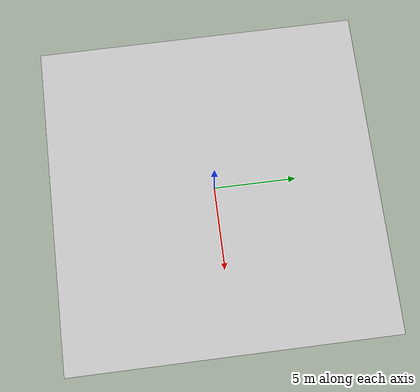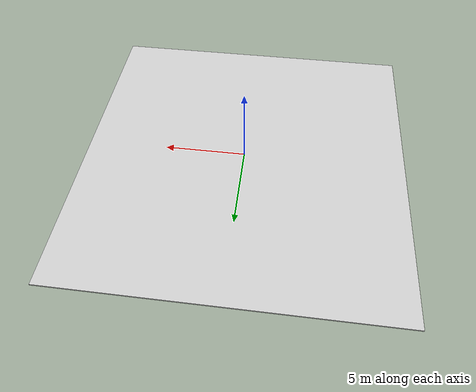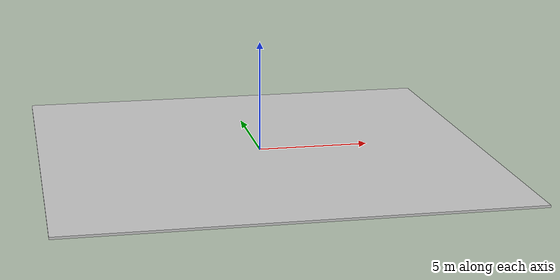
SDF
<?xml version="1.0"?>
<sdf version="1.8">
<world name="map">
    <physics name="1ms" type="ignored">
        <max_step_size>0.001</max_step_size>
        <real_time_factor>1.0</real_time_factor>
    </physics>

    <plugin filename="libgz-sim-physics-system.so" name="gz::sim::systems::Physics" />
    <plugin filename="libgz-sim-sensors-system.so" name="gz::sim::systems::Sensors">
        <render_engine>ogre2</render_engine>
    </plugin>
    <plugin filename="libgz-sim-contact-system" name="gz::sim::systems::Contact" />
    <plugin filename="libgz-sim-imu-system" name="gz::sim::systems::Imu" />
    <plugin filename="libgz-sim-scene-broadcaster-system.so" name="gz::sim::systems::SceneBroadcaster" />
    <plugin filename="libgz-sim-user-commands-system.so" name="gz::sim::systems::UserCommands" />

    <!-- sun and ground -->
    <light type="directional" name="sun">
        <cast_shadows>true</cast_shadows>
        <pose>0 0 10 0 0 0</pose>
        <diffuse>0.8 0.8 0.8 1</diffuse>
        <specular>0.2 0.2 0.2 1</specular>
        <attenuation>
        <range>1000</range>
        <constant>0.9</constant>
        <linear>0.01</linear>
        <quadratic>0.001</quadratic>
        </attenuation>
        <direction>-0.5 0.1 -0.9</direction>
    </light>

    <model name="ground_plane">
        <static>true</static>
        <link name="link">
            <pose>0 0 -0.05 0 0 0</pose>
            <collision name="collision">
                <geometry>
                    <box>
                        <size>20 20 0.1</size>
                    </box>
                </geometry>
            </collision>
            <visual name="visual">
                <geometry>
                    <box>
                        <size>20 20 0.1</size>
                    </box>
                </geometry>
                <material>
                    <ambient>0.8 0.8 0.8 1</ambient>
                    <diffuse>0.8 0.8 0.8 1</diffuse>
                    <specular>0.8 0.8 0.8 1</specular>
                </material>
            </visual>
        </link>
    </model>

    <!-- obstacles -->
</world>
</sdf>
